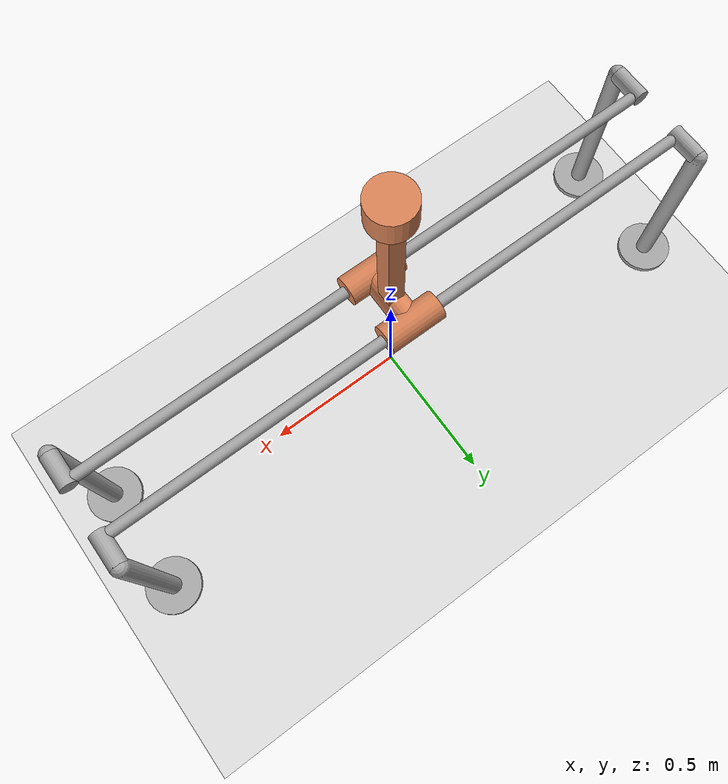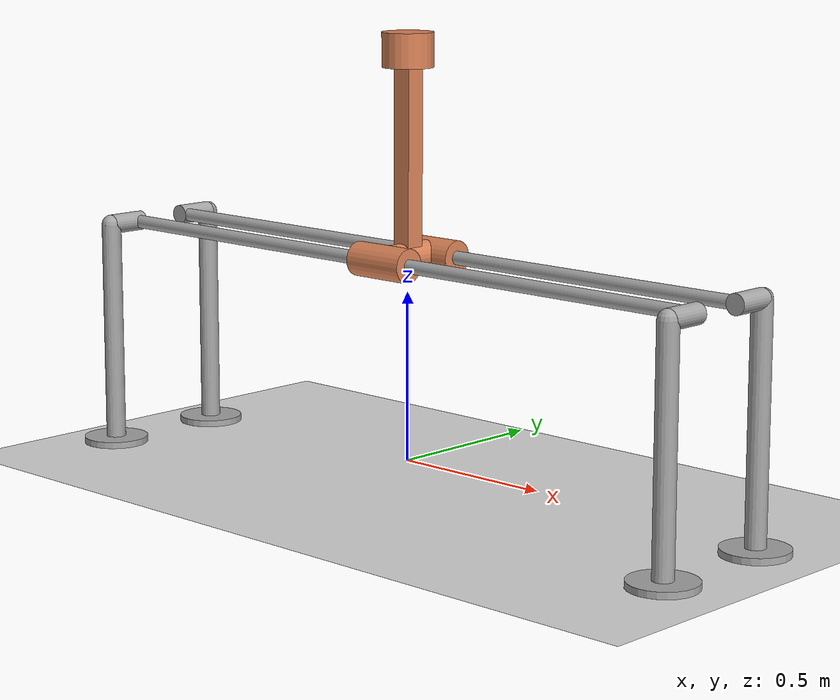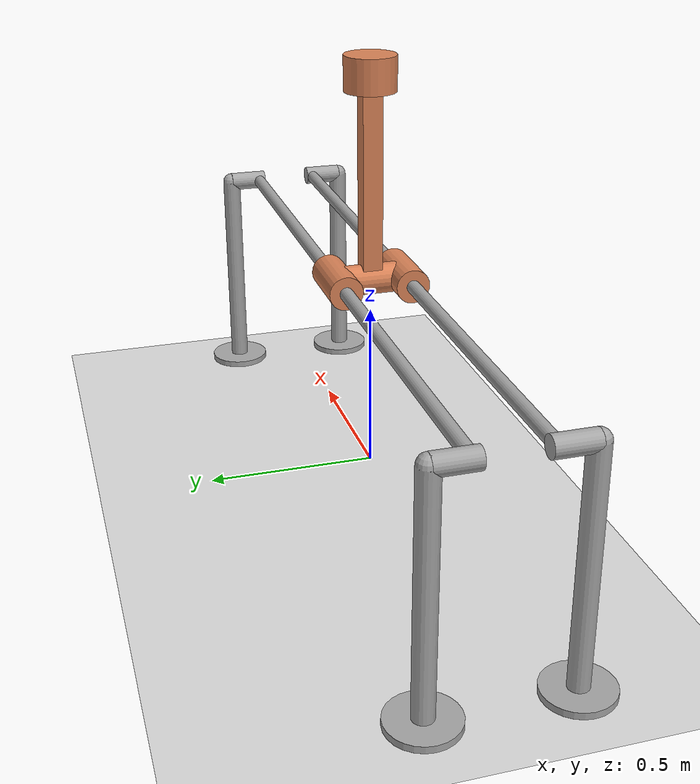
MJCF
<mujoco model="cart-pole">
	<include file="scene.xml"/>
	<compiler inertiafromgeom="true"/>
	<default>
		<joint armature="0" damping="1" limited="true"/>
		<geom contype="0" friction="1 0.1 0.1" material="geom"/>
		<tendon/>
		<motor ctrlrange="-3 3"/>
	</default>
	<statistic center="0.2 0.1 0.45"/>

	<visual>
		<global elevation = "-25" azimuth= "115" fovy="45" offwidth = "1500" offheight = "1000"/>
	</visual>
	<option gravity="0 0 -9.81" integrator="RK4" timestep="0.02"/>
	<size nstack="3000"/>
	<worldbody>
		<geom condim="3" material="groundplane" name="floor" pos="0 0 -0.1" size="1.3 1.3 0.1" type="plane"/>
	    <!--  ================= CART POLE ================= /-->
		<geom name="rail" pos="0 0.1 0.6" quat="0.707 0 0.707 0" material="fixed-geom-mat" size="0.02 1.1" type="cylinder"/>
		<geom name="rail-arm-right" pos="1.1 0.2 0.26" quat="0 0 1 0" material="fixed-geom-mat" size="0.03 0.34" type="capsule"/>
		<geom name="rail-connector-right" pos="1.1 0.14 0.6" quat="1 1 0 0" material="fixed-geom-mat" size="0.03 0.06" type="cylinder"/>
		<geom name="rail-base-right" pos="1.1 0.2 -0.09" quat="1 0 0 0" material="fixed-geom-mat" size="0.1 0.01" type="cylinder"/>

		<geom name="rail-arm-left" pos="-1.1 0.2 0.26" quat="0 0 1 0" material="fixed-geom-mat" size="0.03 0.34" type="capsule"/>
		<geom name="rail-connector-left" pos="-1.1 0.14 0.6" quat="1 1 0 0" material="fixed-geom-mat" size="0.03 0.06" type="cylinder"/>
		<geom name="rail-base-left" pos="-1.1 0.2 -0.09" quat="1 0 0 0" material="fixed-geom-mat" size="0.1 0.01" type="cylinder"/>

		<geom name="rail2" pos="0 -0.1 0.6" quat="0.707 0 0.707 0" material="fixed-geom-mat" size="0.02 1.1" type="cylinder"/>
		<geom name="rail2-arm-right" pos="1.1 -0.2 0.26" quat="0 0 1 0" material="fixed-geom-mat" size="0.03 0.34" type="capsule"/>
		<geom name="rail2-connector-right" pos="1.1 -0.14 0.6" quat="1 1 0 0" material="fixed-geom-mat" size="0.03 0.06" type="cylinder"/>
		<geom name="rail2-base-right" pos="1.1 -0.2 -0.09" quat="1 0 0 0" material="fixed-geom-mat" size="0.1 0.01" type="cylinder"/>

		<geom name="rail2-arm-left" pos="-1.1 -0.2 0.26" quat="0 0 1 0" material="fixed-geom-mat" size="0.03 0.34" type="capsule"/>
		<geom name="rail2-connector-left" pos="-1.1 -0.14 0.6" quat="1 1 0 0" material="fixed-geom-mat" size="0.03 0.06" type="cylinder"/>
		<geom name="rail2-base-left" pos="-1.1 -0.2 -0.09" quat="1 0 0 0" material="fixed-geom-mat" size="0.1 0.01" type="cylinder"/>

		<body name="cart" pos="0 0 0.6">
			<joint axis="1 0 0" limited="true" name="slider" pos="0 0 0" range="-1 1" type="slide"/>
			<geom name="cart-left" pos="0 0.1 0" quat="0.707 0 0.707 0" size="0.05 0.1" type="cylinder"/>
			<geom name="cart-mid" pos="0 0 0" quat="0 0 1 1" size="0.045 0.1" type="cylinder" material="geom"/>
			<geom name="cart-right" pos="0 -0.1 0" quat="0.707 0 0.707 0" size="0.05 0.1" type="cylinder"/>
			<body name="pole" pos="0 0 0">
				<joint axis="0 1 0" name="hinge" pos="0 0 0" limited="false" range="-80 80" type="hinge" ref="180"/>
				<geom fromto="0 0 0 0.001 0 0.6" name="cpole" size="0.029 0.3 0.029" type="box"/>
				<body name="tip" pos="0.0 0 0.6" quat="1 0 0 0">
					<geom name="tip" size="0.075 0.05" type="cylinder"/>
				</body>
			</body>
		</body>
	</worldbody>
	<actuator>
		<motor ctrllimited="true" ctrlrange="-3 3" gear="100" joint="slider" name="slide"/>
	</actuator>
</mujoco>

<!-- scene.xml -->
<mujoco model="robot scene">

  <statistic center="0 0 0.8" extent="2"/>

  <visual>
    <headlight diffuse="0.3 0.3 0.3" ambient="0.6 0.6 0.6" specular="0.2 0.2 0.2"/>
    <rgba haze="0.15 0.25 0.35 1"/>
    <global azimuth="120" elevation="-20"/>
  </visual>

  <asset>
    <!-- Solid gray skybox -->
    <texture type="skybox" builtin="flat" rgb1="0.5 0.5 0.5" width="1" height="1"/>

    <!-- Ground texture remains the same -->
    <texture type="2d" name="groundplane" builtin="checker" mark="cross" rgb1="0.84 0.84 0.84" rgb2="0.89 0.89 0.89"
      markrgb="0.4 0.4 0.4" width="300" height="300"/>
    <material name="groundplane" texture="groundplane" texuniform="true" texrepeat="5 5" reflectance="0.05" shininess="0.5" />

    <!-- Geom materials -->
    <texture builtin="flat" height="128" mark="cross" markrgb="1 1 1" name="texgeom" random="0.01" rgb1="0.85490197 0.5137255  0.34" rgb2="0.87 0.66 0.47" type="cube" width="128"/>
    <material name="geom" texture="texgeom" texuniform="true"/>

    <texture builtin="flat" height="128" mark="cross" markrgb="1 1 1" name="fixed-geom-text" random="0.01" rgb1="0.65 0.65 0.65" rgb2="0.4 0.4 0.4" type="cube" width="128"/>
    <material name="fixed-geom-mat" texture="fixed-geom-text" texuniform="true"/>

  </asset>

  <worldbody>
    <light pos="1 -1 1.5" dir="-1 1 -1" diffuse="0.4 0.4 0.4" directional="true"/>
  </worldbody>
</mujoco>
